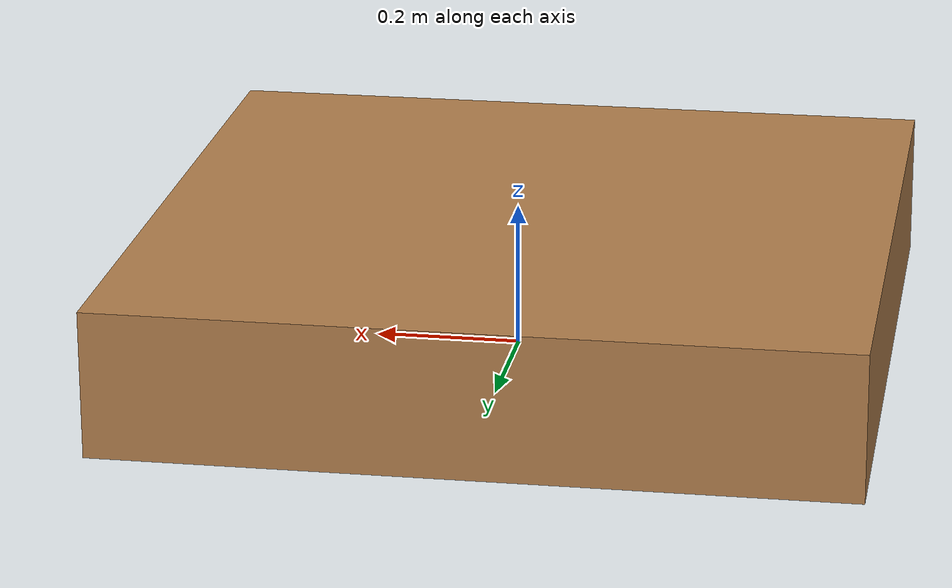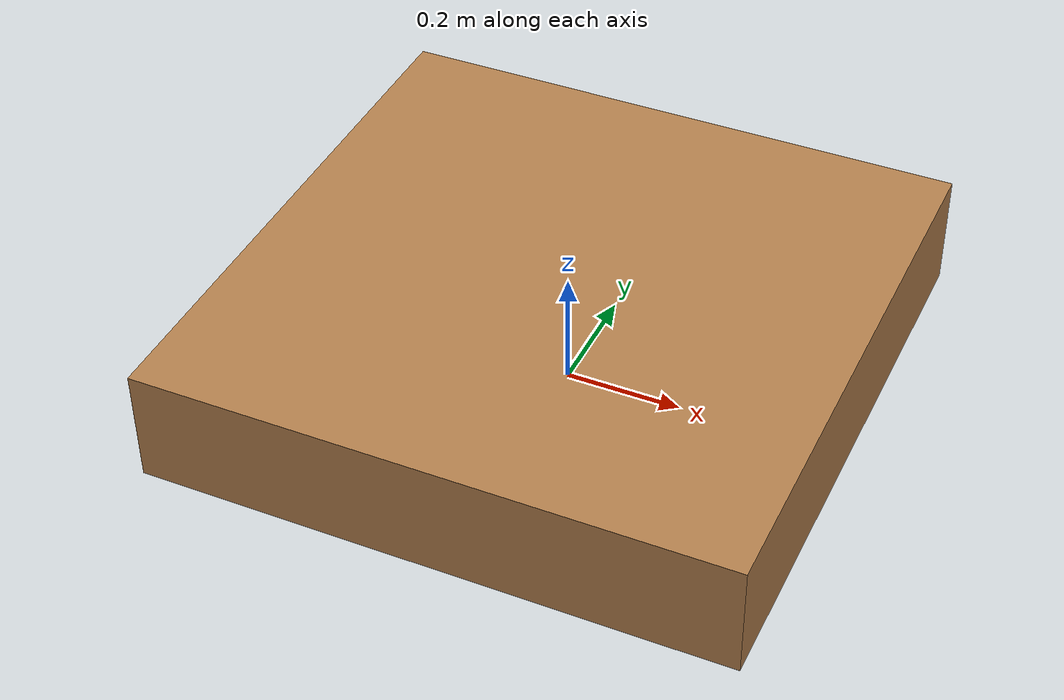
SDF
<?xml version='1.0'?>
<sdf version='1.7'>
  <model name='briks_down'>
    <pose>-0.015 0.01 0 0 -0 0</pose>
    <link name='Wall_2'>
      <collision name='Wall_2_Collision'>
        <geometry>
          <box>
            <size>1.01 1 0.2</size>
          </box>
        </geometry>
        <pose>0 0 0.1 0 -0 0</pose>
      </collision>
      <visual name='Wall_2_Visual'>
        <pose>0 0 0.1 0 -0 0</pose>
        <geometry>
          <box>
            <size>1.01 1 0.2</size>
          </box>
        </geometry>
        <material>
          <script>
            <uri>file://media/materials/scripts/gazebo.material</uri>
            <name>Gazebo/Wood</name>
          </script>
          <ambient>1 1 1 1</ambient>
        </material>
        <meta>
          <layer>0</layer>
        </meta>
      </visual>
      <pose>-0 0 0 0 -0 0</pose>
    </link>
    <static>1</static>
  </model>
</sdf>
